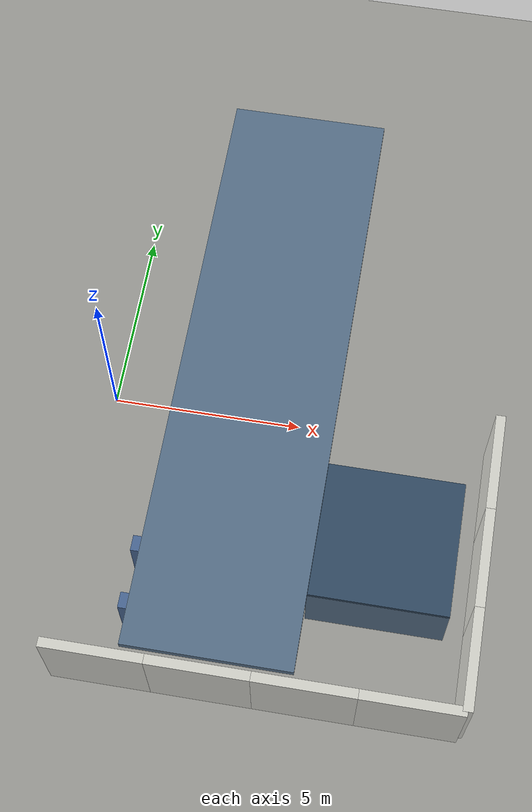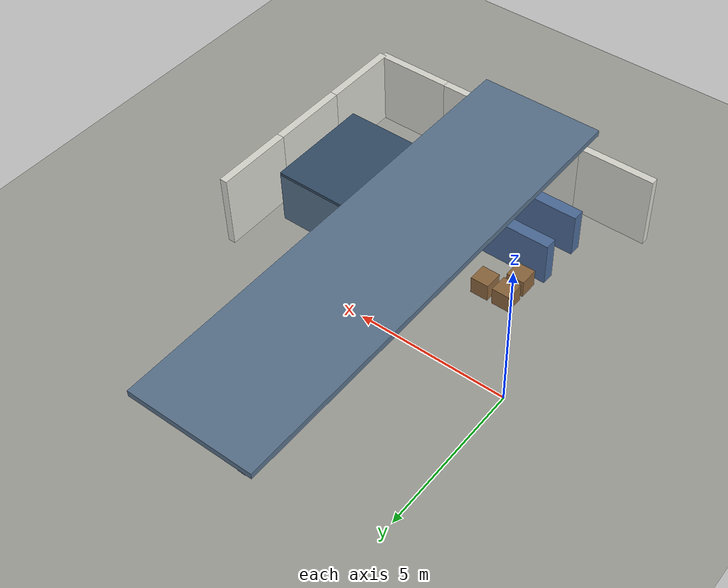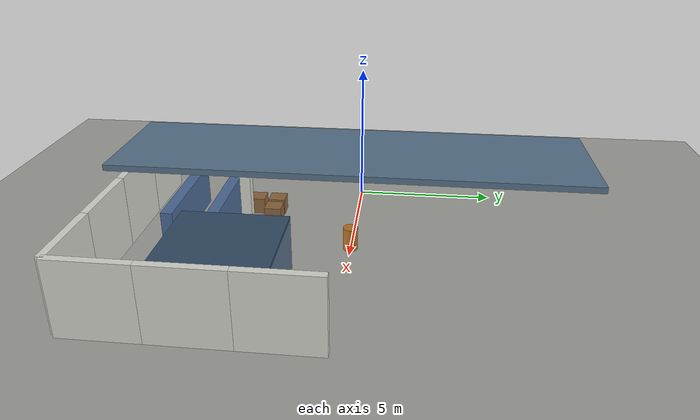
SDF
<sdf version="1.9">
 <world name="default">
  <model name="ground_plane">
   <static>true</static>
   <link name="link">
    <collision name="collision">
     <geometry><plane><normal>0 0 1</normal><size>200 200</size></plane></geometry>
     <surface><friction><ode><mu>1.0</mu><mu2>1.0</mu2></ode></friction></surface>
    </collision>
    <visual name="visual">
     <geometry><plane><normal>0 0 1</normal><size>200 200</size></plane></geometry>
     <material>
      <ambient>0.310 0.310 0.300 1</ambient>
      <diffuse>0.620 0.620 0.600 1</diffuse>
      <specular>0.05 0.05 0.05 1</specular>
      <pbr>
       <metal>
        <albedo_map>materials/textures/concrete.png</albedo_map>
        <metalness>0.0</metalness>
        <roughness>0.9</roughness>
       </metal>
      </pbr>
     </material>
    </visual>
   </link>
  </model>
  <model name="wall_south_4">
   <static>true</static>
   <pose>1.26562 -7.62500 1.25000 0 0.000000 0</pose>
   <link name="link">
    <collision name="collision">
     <geometry><box><size>2.53125 0.25000 2.50000</size></box></geometry>
     <surface><friction><ode><mu>1.0</mu><mu2>1.0</mu2></ode></friction></surface>
    </collision>
    <visual name="visual">
     <geometry><box><size>2.53125 0.25000 2.50000</size></box></geometry>
     <material>
      <ambient>0.425 0.425 0.410 1</ambient>
      <diffuse>0.850 0.850 0.820 1</diffuse>
      <specular>0.1 0.1 0.1 1</specular>
      <pbr>
       <metal>
        <albedo_map>materials/textures/painted_wall.png</albedo_map>
        <metalness>0.0</metalness>
        <roughness>0.85</roughness>
       </metal>
      </pbr>
     </material>
    </visual>
   </link>
  </model>
  <model name="wall_south_5">
   <static>true</static>
   <pose>3.79688 -7.62500 1.25000 0 0.000000 0</pose>
   <link name="link">
    <collision name="collision">
     <geometry><box><size>2.53125 0.25000 2.50000</size></box></geometry>
     <surface><friction><ode><mu>1.0</mu><mu2>1.0</mu2></ode></friction></surface>
    </collision>
    <visual name="visual">
     <geometry><box><size>2.53125 0.25000 2.50000</size></box></geometry>
     <material>
      <ambient>0.425 0.425 0.410 1</ambient>
      <diffuse>0.850 0.850 0.820 1</diffuse>
      <specular>0.1 0.1 0.1 1</specular>
      <pbr>
       <metal>
        <albedo_map>materials/textures/painted_wall.png</albedo_map>
        <metalness>0.0</metalness>
        <roughness>0.85</roughness>
       </metal>
      </pbr>
     </material>
    </visual>
   </link>
  </model>
  <model name="wall_south_6">
   <static>true</static>
   <pose>6.32812 -7.62500 1.25000 0 0.000000 0</pose>
   <link name="link">
    <collision name="collision">
     <geometry><box><size>2.53125 0.25000 2.50000</size></box></geometry>
     <surface><friction><ode><mu>1.0</mu><mu2>1.0</mu2></ode></friction></surface>
    </collision>
    <visual name="visual">
     <geometry><box><size>2.53125 0.25000 2.50000</size></box></geometry>
     <material>
      <ambient>0.425 0.425 0.410 1</ambient>
      <diffuse>0.850 0.850 0.820 1</diffuse>
      <specular>0.1 0.1 0.1 1</specular>
      <pbr>
       <metal>
        <albedo_map>materials/textures/painted_wall.png</albedo_map>
        <metalness>0.0</metalness>
        <roughness>0.85</roughness>
       </metal>
      </pbr>
     </material>
    </visual>
   </link>
  </model>
  <model name="wall_south_7">
   <static>true</static>
   <pose>8.85938 -7.62500 1.25000 0 0.000000 0</pose>
   <link name="link">
    <collision name="collision">
     <geometry><box><size>2.53125 0.25000 2.50000</size></box></geometry>
     <surface><friction><ode><mu>1.0</mu><mu2>1.0</mu2></ode></friction></surface>
    </collision>
    <visual name="visual">
     <geometry><box><size>2.53125 0.25000 2.50000</size></box></geometry>
     <material>
      <ambient>0.425 0.425 0.410 1</ambient>
      <diffuse>0.850 0.850 0.820 1</diffuse>
      <specular>0.1 0.1 0.1 1</specular>
      <pbr>
       <metal>
        <albedo_map>materials/textures/painted_wall.png</albedo_map>
        <metalness>0.0</metalness>
        <roughness>0.85</roughness>
       </metal>
      </pbr>
     </material>
    </visual>
   </link>
  </model>
  <model name="wall_east_0">
   <static>true</static>
   <pose>10.12500 -6.35417 1.25000 0 0.000000 0</pose>
   <link name="link">
    <collision name="collision">
     <geometry><box><size>0.25000 2.54167 2.50000</size></box></geometry>
     <surface><friction><ode><mu>1.0</mu><mu2>1.0</mu2></ode></friction></surface>
    </collision>
    <visual name="visual">
     <geometry><box><size>0.25000 2.54167 2.50000</size></box></geometry>
     <material>
      <ambient>0.425 0.425 0.410 1</ambient>
      <diffuse>0.850 0.850 0.820 1</diffuse>
      <specular>0.1 0.1 0.1 1</specular>
      <pbr>
       <metal>
        <albedo_map>materials/textures/painted_wall.png</albedo_map>
        <metalness>0.0</metalness>
        <roughness>0.85</roughness>
       </metal>
      </pbr>
     </material>
    </visual>
   </link>
  </model>
  <model name="wall_east_1">
   <static>true</static>
   <pose>10.12500 -3.81250 1.25000 0 0.000000 0</pose>
   <link name="link">
    <collision name="collision">
     <geometry><box><size>0.25000 2.54167 2.50000</size></box></geometry>
     <surface><friction><ode><mu>1.0</mu><mu2>1.0</mu2></ode></friction></surface>
    </collision>
    <visual name="visual">
     <geometry><box><size>0.25000 2.54167 2.50000</size></box></geometry>
     <material>
      <ambient>0.425 0.425 0.410 1</ambient>
      <diffuse>0.850 0.850 0.820 1</diffuse>
      <specular>0.1 0.1 0.1 1</specular>
      <pbr>
       <metal>
        <albedo_map>materials/textures/painted_wall.png</albedo_map>
        <metalness>0.0</metalness>
        <roughness>0.85</roughness>
       </metal>
      </pbr>
     </material>
    </visual>
   </link>
  </model>
  <model name="wall_east_2">
   <static>true</static>
   <pose>10.12500 -1.27083 1.25000 0 0.000000 0</pose>
   <link name="link">
    <collision name="collision">
     <geometry><box><size>0.25000 2.54167 2.50000</size></box></geometry>
     <surface><friction><ode><mu>1.0</mu><mu2>1.0</mu2></ode></friction></surface>
    </collision>
    <visual name="visual">
     <geometry><box><size>0.25000 2.54167 2.50000</size></box></geometry>
     <material>
      <ambient>0.425 0.425 0.410 1</ambient>
      <diffuse>0.850 0.850 0.820 1</diffuse>
      <specular>0.1 0.1 0.1 1</specular>
      <pbr>
       <metal>
        <albedo_map>materials/textures/painted_wall.png</albedo_map>
        <metalness>0.0</metalness>
        <roughness>0.85</roughness>
       </metal>
      </pbr>
     </material>
    </visual>
   </link>
  </model>
  <model name="rack_s1b">
   <static>true</static>
   <pose>3.50000 -4.50000 0.75000 0 0.000000 0</pose>
   <link name="link">
    <collision name="collision">
     <geometry><box><size>4.00000 0.40000 1.50000</size></box></geometry>
     <surface><friction><ode><mu>1.0</mu><mu2>1.0</mu2></ode></friction></surface>
    </collision>
    <visual name="visual">
     <geometry><box><size>4.00000 0.40000 1.50000</size></box></geometry>
     <material>
      <ambient>0.150 0.210 0.300 1</ambient>
      <diffuse>0.300 0.420 0.600 1</diffuse>
      <specular>0.1 0.1 0.1 1</specular>
      <pbr>
       <metal>
        <albedo_map>materials/textures/steel.png</albedo_map>
        <metalness>0.0</metalness>
        <roughness>0.85</roughness>
       </metal>
      </pbr>
     </material>
    </visual>
   </link>
  </model>
  <model name="rack_s2b">
   <static>true</static>
   <pose>3.50000 -6.00000 0.75000 0 0.000000 0</pose>
   <link name="link">
    <collision name="collision">
     <geometry><box><size>4.00000 0.40000 1.50000</size></box></geometry>
     <surface><friction><ode><mu>1.0</mu><mu2>1.0</mu2></ode></friction></surface>
    </collision>
    <visual name="visual">
     <geometry><box><size>4.00000 0.40000 1.50000</size></box></geometry>
     <material>
      <ambient>0.150 0.210 0.300 1</ambient>
      <diffuse>0.300 0.420 0.600 1</diffuse>
      <specular>0.1 0.1 0.1 1</specular>
      <pbr>
       <metal>
        <albedo_map>materials/textures/steel.png</albedo_map>
        <metalness>0.0</metalness>
        <roughness>0.85</roughness>
       </metal>
      </pbr>
     </material>
    </visual>
   </link>
  </model>
  <model name="machine_se">
   <static>true</static>
   <pose>7.75000 -3.50000 0.90000 0 0.000000 0</pose>
   <link name="link">
    <collision name="collision">
     <geometry><box><size>3.50000 3.50000 1.80000</size></box></geometry>
     <surface><friction><ode><mu>1.0</mu><mu2>1.0</mu2></ode></friction></surface>
    </collision>
    <visual name="visual">
     <geometry><box><size>3.50000 3.50000 1.80000</size></box></geometry>
     <material>
      <ambient>0.175 0.225 0.275 1</ambient>
      <diffuse>0.350 0.450 0.550 1</diffuse>
      <specular>0.1 0.1 0.1 1</specular>
      <pbr>
       <metal>
        <albedo_map>materials/textures/steel.png</albedo_map>
        <metalness>0.0</metalness>
        <roughness>0.85</roughness>
       </metal>
      </pbr>
     </material>
    </visual>
   </link>
  </model>
  <model name="machine_se_panel">
   <static>true</static>
   <pose>7.75000 -3.50000 1.85000 0 0.000000 0</pose>
   <link name="link">
    <collision name="collision">
     <geometry><box><size>3.50000 3.50000 0.10000</size></box></geometry>
     <surface><friction><ode><mu>1.0</mu><mu2>1.0</mu2></ode></friction></surface>
    </collision>
    <visual name="visual">
     <geometry><box><size>3.50000 3.50000 0.10000</size></box></geometry>
     <material>
      <ambient>0.100 0.150 0.200 1</ambient>
      <diffuse>0.200 0.300 0.400 1</diffuse>
      <specular>0.1 0.1 0.1 1</specular>
     </material>
    </visual>
   </link>
  </model>
  <model name="pillar_se">
   <static>true</static>
   <pose>4.50000 -3.50000 1.50000 0 0.000000 0</pose>
   <link name="link">
    <collision name="collision">
     <geometry><box><size>0.35000 0.35000 3.00000</size></box></geometry>
     <surface><friction><ode><mu>1.0</mu><mu2>1.0</mu2></ode></friction></surface>
    </collision>
    <visual name="visual">
     <geometry><box><size>0.35000 0.35000 3.00000</size></box></geometry>
     <material>
      <ambient>0.425 0.425 0.410 1</ambient>
      <diffuse>0.850 0.850 0.820 1</diffuse>
      <specular>0.1 0.1 0.1 1</specular>
      <pbr>
       <metal>
        <albedo_map>materials/textures/painted_wall.png</albedo_map>
        <metalness>0.0</metalness>
        <roughness>0.85</roughness>
       </metal>
      </pbr>
     </material>
    </visual>
   </link>
  </model>
  <model name="crate_s1">
   <static>true</static>
   <pose>2.00000 -3.00000 0.30000 0 0.000000 0</pose>
   <link name="link">
    <collision name="collision">
     <geometry><box><size>0.60000 0.60000 0.60000</size></box></geometry>
     <surface><friction><ode><mu>1.0</mu><mu2>1.0</mu2></ode></friction></surface>
    </collision>
    <visual name="visual">
     <geometry><box><size>0.60000 0.60000 0.60000</size></box></geometry>
     <material>
      <ambient>0.275 0.200 0.120 1</ambient>
      <diffuse>0.550 0.400 0.240 1</diffuse>
      <specular>0.1 0.1 0.1 1</specular>
      <pbr>
       <metal>
        <albedo_map>materials/textures/crate.png</albedo_map>
        <metalness>0.0</metalness>
        <roughness>0.85</roughness>
       </metal>
      </pbr>
     </material>
    </visual>
   </link>
  </model>
  <model name="crate_s2">
   <static>true</static>
   <pose>2.75000 -3.00000 0.30000 0 0.000000 0</pose>
   <link name="link">
    <collision name="collision">
     <geometry><box><size>0.60000 0.60000 0.60000</size></box></geometry>
     <surface><friction><ode><mu>1.0</mu><mu2>1.0</mu2></ode></friction></surface>
    </collision>
    <visual name="visual">
     <geometry><box><size>0.60000 0.60000 0.60000</size></box></geometry>
     <material>
      <ambient>0.275 0.200 0.120 1</ambient>
      <diffuse>0.550 0.400 0.240 1</diffuse>
      <specular>0.1 0.1 0.1 1</specular>
      <pbr>
       <metal>
        <albedo_map>materials/textures/crate.png</albedo_map>
        <metalness>0.0</metalness>
        <roughness>0.85</roughness>
       </metal>
      </pbr>
     </material>
    </visual>
   </link>
  </model>
  <model name="crate_s3">
   <static>true</static>
   <pose>2.00000 -3.75000 0.30000 0 0.000000 0</pose>
   <link name="link">
    <collision name="collision">
     <geometry><box><size>0.60000 0.60000 0.60000</size></box></geometry>
     <surface><friction><ode><mu>1.0</mu><mu2>1.0</mu2></ode></friction></surface>
    </collision>
    <visual name="visual">
     <geometry><box><size>0.60000 0.60000 0.60000</size></box></geometry>
     <material>
      <ambient>0.275 0.200 0.120 1</ambient>
      <diffuse>0.550 0.400 0.240 1</diffuse>
      <specular>0.1 0.1 0.1 1</specular>
      <pbr>
       <metal>
        <albedo_map>materials/textures/crate.png</albedo_map>
        <metalness>0.0</metalness>
        <roughness>0.85</roughness>
       </metal>
      </pbr>
     </material>
    </visual>
   </link>
  </model>
  <model name="roof_3">
   <static>true</static>
   <pose>4.05000 0.00000 3.30000 0 0.000000 0</pose>
   <link name="link">
    <collision name="collision">
     <geometry><box><size>4.05000 15.25000 0.20000</size></box></geometry>
     <surface><friction><ode><mu>1.0</mu><mu2>1.0</mu2></ode></friction></surface>
    </collision>
    <visual name="visual">
     <geometry><box><size>4.05000 15.25000 0.20000</size></box></geometry>
     <material>
      <ambient>0.175 0.225 0.275 1</ambient>
      <diffuse>0.350 0.450 0.550 1</diffuse>
      <specular>0.1 0.1 0.1 1</specular>
      <pbr>
       <metal>
        <albedo_map>materials/textures/steel.png</albedo_map>
        <metalness>0.0</metalness>
        <roughness>0.85</roughness>
       </metal>
      </pbr>
     </material>
    </visual>
   </link>
  </model>
  <model name="truss_5">
   <static>true</static>
   <pose>2.50000 0.00000 3.05000 0 0.000000 0</pose>
   <link name="link">
    <collision name="collision">
     <geometry><box><size>0.25000 15.00000 0.30000</size></box></geometry>
     <surface><friction><ode><mu>1.0</mu><mu2>1.0</mu2></ode></friction></surface>
    </collision>
    <visual name="visual">
     <geometry><box><size>0.25000 15.00000 0.30000</size></box></geometry>
     <material>
      <ambient>0.175 0.225 0.275 1</ambient>
      <diffuse>0.350 0.450 0.550 1</diffuse>
      <specular>0.1 0.1 0.1 1</specular>
      <pbr>
       <metal>
        <albedo_map>materials/textures/steel.png</albedo_map>
        <metalness>0.0</metalness>
        <roughness>0.85</roughness>
       </metal>
      </pbr>
     </material>
    </visual>
   </link>
  </model>
  <model name="barrel_east">
   <static>true</static>
   <pose>4.50000 0.00000 0.40000 0 0 0</pose>
   <link name="link">
    <collision name="collision">
     <geometry><cylinder><radius>0.25</radius><length>0.8</length></cylinder></geometry>
     <surface><friction><ode><mu>1.0</mu><mu2>1.0</mu2></ode></friction></surface>
    </collision>
    <visual name="visual">
     <geometry><cylinder><radius>0.25</radius><length>0.8</length></cylinder></geometry>
     <material>
      <ambient>0.350 0.225 0.075 1</ambient>
      <diffuse>0.700 0.450 0.150 1</diffuse>
      <specular>0.1 0.1 0.1 1</specular>
      <pbr>
       <metal>
        <albedo_map>materials/textures/steel.png</albedo_map>
        <metalness>0.0</metalness>
        <roughness>0.85</roughness>
       </metal>
      </pbr>
     </material>
    </visual>
   </link>
  </model>
 </world>
</sdf>
